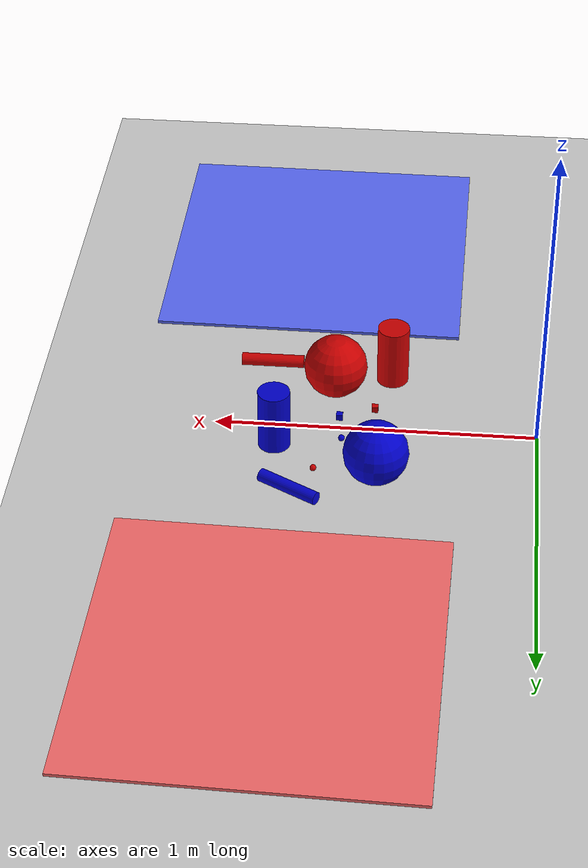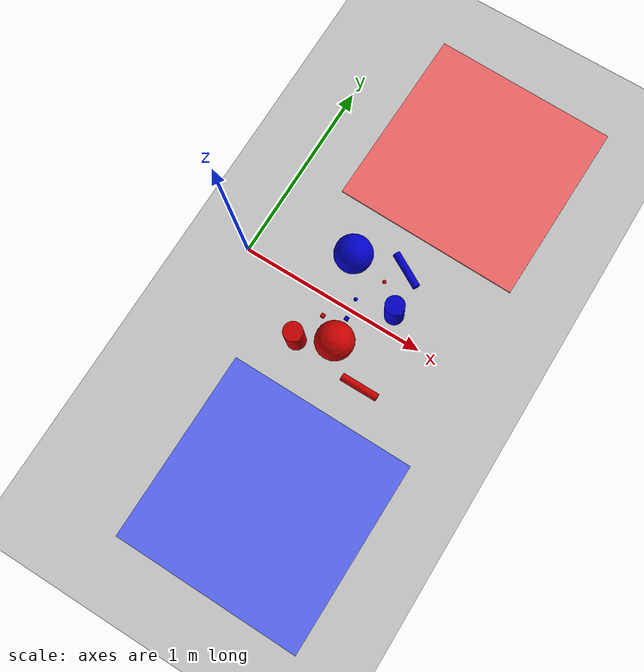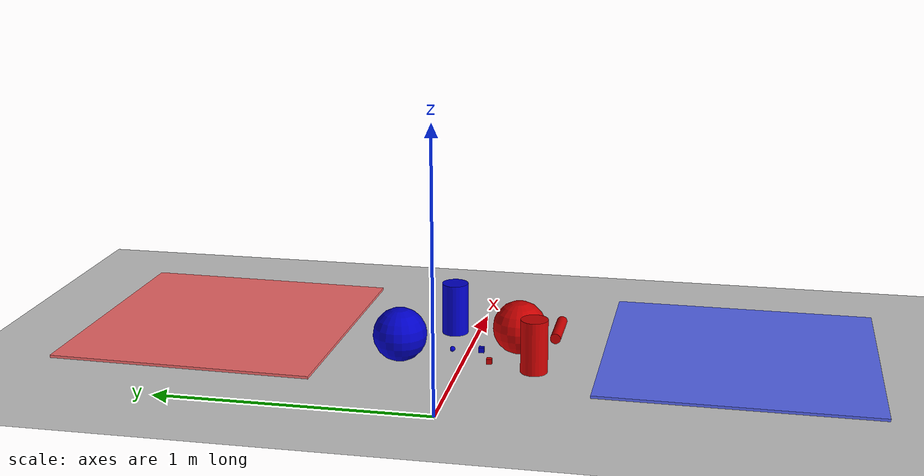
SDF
<sdf version="1.7">
 <world name="default">
  <light name="sun" type="directional">
   <pose>0 0 10 0 -0 0</pose>
   <diffuse>0.8 0.8 0.8 1</diffuse>
   <specular>0.2 0.2 0.2 1</specular>
   <attenuation>
    <range>1000</range>
    <constant>0.9</constant>
    <linear>0.01</linear>
    <quadratic>0.001</quadratic>
   </attenuation>
   <direction>-0.5 0.1 -0.9</direction>
   <spot><inner_angle>0</inner_angle><outer_angle>0</outer_angle><falloff>0</falloff></spot>
  </light>
  <model name="ground_plane">
   <static>1</static>
   <link name="link">
    <collision name="collision">
     <geometry><plane><normal>0 0 1</normal><size>100 100</size></plane></geometry>
     <surface>
      <contact><collide_bitmask>65535</collide_bitmask></contact>
      <friction><ode><mu>100</mu><mu2>50</mu2></ode></friction>
     </surface>
    </collision>
    <visual name="visual">
     <cast_shadows>0</cast_shadows>
     <geometry><plane><normal>0 0 1</normal><size>100 100</size></plane></geometry>
     <material>
      <script><uri>file://media/materials/scripts/gazebo.material</uri><name>Gazebo/Grey</name></script>
     </material>
    </visual>
   </link>
  </model>
  <gravity>0 0 -9.8</gravity>
  <magnetic_field>6e-06 2.3e-05 -4.2e-05</magnetic_field>
  <atmosphere type="adiabatic"/>
  <physics type="ode">
   <max_step_size>0.001</max_step_size>
   <real_time_factor>1</real_time_factor>
   <real_time_update_rate>1000</real_time_update_rate>
  </physics>
  <scene><ambient>0.4 0.4 0.4 1</ambient><background>0.7 0.7 0.7 1</background><shadows>1</shadows></scene>
  <spherical_coordinates>
   <surface_model>EARTH_WGS84</surface_model>
   <latitude_deg>0</latitude_deg>
   <longitude_deg>0</longitude_deg>
   <elevation>0</elevation>
   <heading_deg>0</heading_deg>
  </spherical_coordinates>
  <model name="blue_target_area">
   <link name="link">
    <inertial>
     <mass>2</mass>
     <inertia>
      <ixx>0.166898</ixx>
      <ixy>0</ixy>
      <ixz>0</ixz>
      <iyy>0.166898</iyy>
      <iyz>0</iyz>
      <izz>0.333333</izz>
     </inertia>
    </inertial>
    <visual name="visual">
     <geometry><box><size>1 1 0.01</size></box></geometry>
     <material>
      <script><name>Gazebo/Grey</name><uri>file://media/materials/scripts/gazebo.material</uri></script>
      <shader type="pixel"><normal_map>__default__</normal_map></shader>
      <ambient>0.353 0.42 0.98 1</ambient>
      <diffuse>0.7 0.7 0.7 1</diffuse>
      <specular>0.01 0.01 0.01 1</specular>
      <emissive>0 0 0 1</emissive>
     </material>
    </visual>
    <collision name="collision">
     <geometry><box><size>1 1 0.01</size></box></geometry>
     <surface>
      <friction>
       <ode><mu>1</mu><mu2>1</mu2><fdir1>0 0 0</fdir1><slip1>0</slip1><slip2>0</slip2></ode>
       <torsional>
        <coefficient>1</coefficient>
        <patch_radius>0</patch_radius>
        <surface_radius>0</surface_radius>
        <use_patch_radius>1</use_patch_radius>
        <ode><slip>0</slip></ode>
       </torsional>
      </friction>
      <bounce><restitution_coefficient>0</restitution_coefficient><threshold>1e+06</threshold></bounce>
      <contact>
       <collide_without_contact>0</collide_without_contact>
       <collide_without_contact_bitmask>1</collide_without_contact_bitmask>
       <collide_bitmask>1</collide_bitmask>
       <ode>
        <soft_cfm>0</soft_cfm>
        <soft_erp>0.2</soft_erp>
        <kp>1e+13</kp>
        <kd>1</kd>
        <max_vel>0.01</max_vel>
        <min_depth>0</min_depth>
       </ode>
       <bullet>
        <split_impulse>1</split_impulse>
        <split_impulse_penetration_threshold>-0.01</split_impulse_penetration_threshold>
        <soft_cfm>0</soft_cfm>
        <soft_erp>0.2</soft_erp>
        <kp>1e+13</kp>
        <kd>1</kd>
       </bullet>
      </contact>
     </surface>
    </collision>
   </link>
   <static>0</static>
   <pose>0.75 -1 0.005 0 -0 -0.009292</pose>
  </model>
  <model name="red_target_area">
   <link name="link">
    <inertial>
     <mass>2</mass>
     <inertia>
      <ixx>0.166898</ixx>
      <ixy>0</ixy>
      <ixz>0</ixz>
      <iyy>0.166898</iyy>
      <iyz>0</iyz>
      <izz>0.333333</izz>
     </inertia>
    </inertial>
    <visual name="visual">
     <geometry><box><size>1 1 0.01</size></box></geometry>
     <material>
      <script><name>Gazebo/Grey</name><uri>file://media/materials/scripts/gazebo.material</uri></script>
      <shader type="pixel"><normal_map>__default__</normal_map></shader>
      <ambient>0.973 0.42 0.42 1</ambient>
      <diffuse>0.7 0.7 0.7 1</diffuse>
      <specular>0.01 0.01 0.01 1</specular>
      <emissive>0 0 0 1</emissive>
     </material>
    </visual>
    <collision name="collision">
     <geometry><box><size>1 1 0.01</size></box></geometry>
     <surface>
      <friction>
       <ode><mu>1</mu><mu2>1</mu2><fdir1>0 0 0</fdir1><slip1>0</slip1><slip2>0</slip2></ode>
       <torsional>
        <coefficient>1</coefficient>
        <patch_radius>0</patch_radius>
        <surface_radius>0</surface_radius>
        <use_patch_radius>1</use_patch_radius>
        <ode><slip>0</slip></ode>
       </torsional>
      </friction>
      <bounce><restitution_coefficient>0</restitution_coefficient><threshold>1e+06</threshold></bounce>
      <contact>
       <collide_without_contact>0</collide_without_contact>
       <collide_without_contact_bitmask>1</collide_without_contact_bitmask>
       <collide_bitmask>1</collide_bitmask>
       <ode>
        <soft_cfm>0</soft_cfm>
        <soft_erp>0.2</soft_erp>
        <kp>1e+13</kp>
        <kd>1</kd>
        <max_vel>0.01</max_vel>
        <min_depth>0</min_depth>
       </ode>
       <bullet>
        <split_impulse>1</split_impulse>
        <split_impulse_penetration_threshold>-0.01</split_impulse_penetration_threshold>
        <soft_cfm>0</soft_cfm>
        <soft_erp>0.2</soft_erp>
        <kp>1e+13</kp>
        <kd>1</kd>
       </bullet>
      </contact>
     </surface>
    </collision>
   </link>
   <static>0</static>
   <pose>0.75 1 0.005 0 -0 -0.022172</pose>
  </model>
  <model name="blue_big_ball">
   <link name="link_0">
    <inertial>
     <mass>1</mass>
     <inertia><ixx>0.1</ixx><ixy>0</ixy><ixz>0</ixz><iyy>0.1</iyy><iyz>0</iyz><izz>0.1</izz></inertia>
    </inertial>
    <visual name="visual">
     <geometry><sphere><radius>0.1</radius></sphere></geometry>
     <material>
      <lighting>1</lighting>
      <script><uri>file://media/materials/scripts/gazebo.material</uri><name>Gazebo/Grey</name></script>
      <shader type="pixel"><normal_map>__default__</normal_map></shader>
      <ambient>0 0 0.8 1</ambient>
      <diffuse>0 0 0.8 1</diffuse>
      <specular>0.01 0.01 0.01 1</specular>
      <emissive>0 0 0 1</emissive>
     </material>
    </visual>
    <collision name="collision">
     <geometry><sphere><radius>0.1</radius></sphere></geometry>
     <surface>
      <friction>
       <ode><mu>1</mu><mu2>1</mu2><fdir1>0 0 0</fdir1><slip1>0</slip1><slip2>0</slip2></ode>
       <torsional>
        <coefficient>1</coefficient>
        <patch_radius>0</patch_radius>
        <surface_radius>0</surface_radius>
        <use_patch_radius>1</use_patch_radius>
        <ode><slip>0</slip></ode>
       </torsional>
      </friction>
      <bounce><restitution_coefficient>0</restitution_coefficient><threshold>1e+06</threshold></bounce>
      <contact>
       <collide_without_contact>0</collide_without_contact>
       <collide_without_contact_bitmask>1</collide_without_contact_bitmask>
       <collide_bitmask>1</collide_bitmask>
       <ode>
        <soft_cfm>0</soft_cfm>
        <soft_erp>0.2</soft_erp>
        <kp>1e+13</kp>
        <kd>1</kd>
        <max_vel>0.01</max_vel>
        <min_depth>0</min_depth>
       </ode>
       <bullet>
        <split_impulse>1</split_impulse>
        <split_impulse_penetration_threshold>-0.01</split_impulse_penetration_threshold>
        <soft_cfm>0</soft_cfm>
        <soft_erp>0.2</soft_erp>
        <kp>1e+13</kp>
        <kd>1</kd>
       </bullet>
      </contact>
     </surface>
    </collision>
   </link>
   <static>0</static>
   <pose>0.484621 0.231708 0.1 0 -0 0</pose>
  </model>
  <model name="red_big_ball">
   <link name="link_0">
    <inertial>
     <mass>1</mass>
     <inertia><ixx>0.1</ixx><ixy>0</ixy><ixz>0</ixz><iyy>0.1</iyy><iyz>0</iyz><izz>0.1</izz></inertia>
    </inertial>
    <visual name="visual">
     <geometry><sphere><radius>0.1</radius></sphere></geometry>
     <material>
      <lighting>1</lighting>
      <script><uri>file://media/materials/scripts/gazebo.material</uri><name>Gazebo/Grey</name></script>
      <shader type="pixel"><normal_map>__default__</normal_map></shader>
      <ambient>0.8 0 0 1</ambient>
      <diffuse>0.8 0 0 1</diffuse>
      <specular>0.01 0.01 0.01 1</specular>
      <emissive>0 0 0 1</emissive>
     </material>
    </visual>
    <collision name="collision">
     <geometry><sphere><radius>0.1</radius></sphere></geometry>
     <surface>
      <friction>
       <ode><mu>1</mu><mu2>1</mu2><fdir1>0 0 0</fdir1><slip1>0</slip1><slip2>0</slip2></ode>
       <torsional>
        <coefficient>1</coefficient>
        <patch_radius>0</patch_radius>
        <surface_radius>0</surface_radius>
        <use_patch_radius>1</use_patch_radius>
        <ode><slip>0</slip></ode>
       </torsional>
      </friction>
      <bounce><restitution_coefficient>0</restitution_coefficient><threshold>1e+06</threshold></bounce>
      <contact>
       <collide_without_contact>0</collide_without_contact>
       <collide_without_contact_bitmask>1</collide_without_contact_bitmask>
       <collide_bitmask>1</collide_bitmask>
       <ode>
        <soft_cfm>0</soft_cfm>
        <soft_erp>0.2</soft_erp>
        <kp>1e+13</kp>
        <kd>1</kd>
        <max_vel>0.01</max_vel>
        <min_depth>0</min_depth>
       </ode>
       <bullet>
        <split_impulse>1</split_impulse>
        <split_impulse_penetration_threshold>-0.01</split_impulse_penetration_threshold>
        <soft_cfm>0</soft_cfm>
        <soft_erp>0.2</soft_erp>
        <kp>1e+13</kp>
        <kd>1</kd>
       </bullet>
      </contact>
     </surface>
    </collision>
   </link>
   <static>0</static>
   <pose>0.637053 -0.187903 0.1 0 -0 0</pose>
  </model>
  <model name="blue_big_cylinder">
   <link name="link_0">
    <inertial>
     <mass>0.0225292</mass>
     <inertia>
      <ixx>0.00190916</ixx>
      <ixy>0</ixy>
      <ixz>0</ixz>
      <iyy>0.00190916</iyy>
      <iyz>0</iyz>
      <izz>6.345e-05</izz>
     </inertia>
    </inertial>
    <visual name="visual">
     <geometry><cylinder><radius>0.05</radius><length>0.2</length></cylinder></geometry>
     <material>
      <lighting>1</lighting>
      <script><uri>file://media/materials/scripts/gazebo.material</uri><name>Gazebo/Grey</name></script>
      <shader type="pixel"><normal_map>__default__</normal_map></shader>
      <ambient>0 0 0.8 1</ambient>
      <diffuse>0 0 0.8 1</diffuse>
      <specular>0.01 0.01 0.01 1</specular>
      <emissive>0 0 0 1</emissive>
     </material>
    </visual>
    <collision name="collision">
     <geometry><cylinder><radius>0.05</radius><length>0.2</length></cylinder></geometry>
     <surface>
      <friction>
       <ode><mu>1</mu><mu2>1</mu2><fdir1>0 0 0</fdir1><slip1>0</slip1><slip2>0</slip2></ode>
       <torsional>
        <coefficient>1</coefficient>
        <patch_radius>0</patch_radius>
        <surface_radius>0</surface_radius>
        <use_patch_radius>1</use_patch_radius>
        <ode><slip>0</slip></ode>
       </torsional>
      </friction>
      <bounce><restitution_coefficient>0</restitution_coefficient><threshold>1e+06</threshold></bounce>
      <contact>
       <collide_without_contact>0</collide_without_contact>
       <collide_without_contact_bitmask>1</collide_without_contact_bitmask>
       <collide_bitmask>1</collide_bitmask>
       <ode>
        <soft_cfm>0</soft_cfm>
        <soft_erp>0.2</soft_erp>
        <kp>1e+13</kp>
        <kd>1</kd>
        <max_vel>0.01</max_vel>
        <min_depth>0</min_depth>
       </ode>
       <bullet>
        <split_impulse>1</split_impulse>
        <split_impulse_penetration_threshold>-0.01</split_impulse_penetration_threshold>
        <soft_cfm>0</soft_cfm>
        <soft_erp>0.2</soft_erp>
        <kp>1e+13</kp>
        <kd>1</kd>
       </bullet>
      </contact>
     </surface>
    </collision>
   </link>
   <static>0</static>
   <pose>0.805453 0.090074 0.1 0 -0 0</pose>
  </model>
  <model name="red_small_ball">
   <link name="link_0">
    <inertial>
     <mass>1</mass>
     <inertia><ixx>0.1</ixx><ixy>0</ixy><ixz>0</ixz><iyy>0.1</iyy><iyz>0</iyz><izz>0.1</izz></inertia>
    </inertial>
    <visual name="visual">
     <geometry><sphere><radius>0.01</radius></sphere></geometry>
     <material>
      <lighting>1</lighting>
      <script><uri>file://media/materials/scripts/gazebo.material</uri><name>Gazebo/Grey</name></script>
      <shader type="pixel"><normal_map>__default__</normal_map></shader>
      <ambient>0.8 0 0 1</ambient>
      <diffuse>0.8 0 0 1</diffuse>
      <specular>0.01 0.01 0.01 1</specular>
      <emissive>0 0 0 1</emissive>
     </material>
    </visual>
    <collision name="collision">
     <geometry><sphere><radius>0.01</radius></sphere></geometry>
     <surface>
      <friction>
       <ode><mu>1</mu><mu2>1</mu2><fdir1>0 0 0</fdir1><slip1>0</slip1><slip2>0</slip2></ode>
       <torsional>
        <coefficient>1</coefficient>
        <patch_radius>0</patch_radius>
        <surface_radius>0</surface_radius>
        <use_patch_radius>1</use_patch_radius>
        <ode><slip>0</slip></ode>
       </torsional>
      </friction>
      <bounce><restitution_coefficient>0</restitution_coefficient><threshold>1e+06</threshold></bounce>
      <contact>
       <collide_without_contact>0</collide_without_contact>
       <collide_without_contact_bitmask>1</collide_without_contact_bitmask>
       <collide_bitmask>1</collide_bitmask>
       <ode>
        <soft_cfm>0</soft_cfm>
        <soft_erp>0.2</soft_erp>
        <kp>1e+13</kp>
        <kd>1</kd>
        <max_vel>0.01</max_vel>
        <min_depth>0</min_depth>
       </ode>
       <bullet>
        <split_impulse>1</split_impulse>
        <split_impulse_penetration_threshold>-0.01</split_impulse_penetration_threshold>
        <soft_cfm>0</soft_cfm>
        <soft_erp>0.2</soft_erp>
        <kp>1e+13</kp>
        <kd>1</kd>
       </bullet>
      </contact>
     </surface>
    </collision>
   </link>
   <static>0</static>
   <pose>0.675496 0.210113 0.01 0 -0 0</pose>
  </model>
  <model name="blue_cylinder">
   <link name="link_0">
    <inertial>
     <mass>0.0225292</mass>
     <inertia>
      <ixx>0.00190916</ixx>
      <ixy>0</ixy>
      <ixz>0</ixz>
      <iyy>0.00190916</iyy>
      <iyz>0</iyz>
      <izz>6.345e-05</izz>
     </inertia>
    </inertial>
    <visual name="visual">
     <geometry><cylinder><radius>0.02</radius><length>0.2</length></cylinder></geometry>
     <material>
      <lighting>1</lighting>
      <script><uri>file://media/materials/scripts/gazebo.material</uri><name>Gazebo/Grey</name></script>
      <shader type="pixel"><normal_map>__default__</normal_map></shader>
      <ambient>0 0 0.8 1</ambient>
      <diffuse>0 0 0.8 1</diffuse>
      <specular>0.01 0.01 0.01 1</specular>
      <emissive>0 0 0 1</emissive>
     </material>
    </visual>
    <collision name="collision">
     <geometry><cylinder><radius>0.02</radius><length>0.2</length></cylinder></geometry>
     <surface>
      <friction>
       <ode><mu>1</mu><mu2>1</mu2><fdir1>0 0 0</fdir1><slip1>0</slip1><slip2>0</slip2></ode>
       <torsional>
        <coefficient>1</coefficient>
        <patch_radius>0</patch_radius>
        <surface_radius>0</surface_radius>
        <use_patch_radius>1</use_patch_radius>
        <ode><slip>0</slip></ode>
       </torsional>
      </friction>
      <bounce><restitution_coefficient>0</restitution_coefficient><threshold>1e+06</threshold></bounce>
      <contact>
       <collide_without_contact>0</collide_without_contact>
       <collide_without_contact_bitmask>1</collide_without_contact_bitmask>
       <collide_bitmask>1</collide_bitmask>
       <ode>
        <soft_cfm>0</soft_cfm>
        <soft_erp>0.2</soft_erp>
        <kp>1e+13</kp>
        <kd>1</kd>
        <max_vel>0.01</max_vel>
        <min_depth>0</min_depth>
       </ode>
       <bullet>
        <split_impulse>1</split_impulse>
        <split_impulse_penetration_threshold>-0.01</split_impulse_penetration_threshold>
        <soft_cfm>0</soft_cfm>
        <soft_erp>0.2</soft_erp>
        <kp>1e+13</kp>
        <kd>1</kd>
       </bullet>
      </contact>
     </surface>
    </collision>
   </link>
   <static>0</static>
   <pose>0.740512 0.316261 0.02 -1.5708 1.56854 -2.07571</pose>
  </model>
  <model name="blue_small_ball">
   <link name="link_0">
    <inertial>
     <mass>1</mass>
     <inertia><ixx>0.1</ixx><ixy>0</ixy><ixz>0</ixz><iyy>0.1</iyy><iyz>0</iyz><izz>0.1</izz></inertia>
    </inertial>
    <visual name="visual">
     <geometry><sphere><radius>0.01</radius></sphere></geometry>
     <material>
      <lighting>1</lighting>
      <script><uri>file://media/materials/scripts/gazebo.material</uri><name>Gazebo/Grey</name></script>
      <shader type="pixel"><normal_map>__default__</normal_map></shader>
      <ambient>0 0 0.8 1</ambient>
      <diffuse>0 0 0.8 1</diffuse>
      <specular>0.01 0.01 0.01 1</specular>
      <emissive>0 0 0 1</emissive>
     </material>
    </visual>
    <collision name="collision">
     <geometry><sphere><radius>0.01</radius></sphere></geometry>
     <surface>
      <friction>
       <ode><mu>1</mu><mu2>1</mu2><fdir1>0 0 0</fdir1><slip1>0</slip1><slip2>0</slip2></ode>
       <torsional>
        <coefficient>1</coefficient>
        <patch_radius>0</patch_radius>
        <surface_radius>0</surface_radius>
        <use_patch_radius>1</use_patch_radius>
        <ode><slip>0</slip></ode>
       </torsional>
      </friction>
      <bounce><restitution_coefficient>0</restitution_coefficient><threshold>1e+06</threshold></bounce>
      <contact>
       <collide_without_contact>0</collide_without_contact>
       <collide_without_contact_bitmask>1</collide_without_contact_bitmask>
       <collide_bitmask>1</collide_bitmask>
       <ode>
        <soft_cfm>0</soft_cfm>
        <soft_erp>0.2</soft_erp>
        <kp>1e+13</kp>
        <kd>1</kd>
        <max_vel>0.01</max_vel>
        <min_depth>0</min_depth>
       </ode>
       <bullet>
        <split_impulse>1</split_impulse>
        <split_impulse_penetration_threshold>-0.01</split_impulse_penetration_threshold>
        <soft_cfm>0</soft_cfm>
        <soft_erp>0.2</soft_erp>
        <kp>1e+13</kp>
        <kd>1</kd>
       </bullet>
      </contact>
     </surface>
    </collision>
   </link>
   <static>0</static>
   <pose>0.600322 0.059487 0.01 0 -0 0</pose>
  </model>
  <model name="red_cylinder">
   <link name="link_0">
    <inertial>
     <mass>0.0225292</mass>
     <inertia>
      <ixx>0.00190916</ixx>
      <ixy>0</ixy>
      <ixz>0</ixz>
      <iyy>0.00190916</iyy>
      <iyz>0</iyz>
      <izz>6.345e-05</izz>
     </inertia>
    </inertial>
    <visual name="visual">
     <geometry><cylinder><radius>0.02</radius><length>0.2</length></cylinder></geometry>
     <material>
      <lighting>1</lighting>
      <script><uri>file://media/materials/scripts/gazebo.material</uri><name>Gazebo/Grey</name></script>
      <shader type="pixel"><normal_map>__default__</normal_map></shader>
      <ambient>0.8 0 0 1</ambient>
      <diffuse>0.8 0 0 1</diffuse>
      <specular>0.01 0.01 0.01 1</specular>
      <emissive>0 0 0 1</emissive>
     </material>
    </visual>
    <collision name="collision">
     <geometry><cylinder><radius>0.02</radius><length>0.2</length></cylinder></geometry>
     <surface>
      <friction>
       <ode><mu>1</mu><mu2>1</mu2><fdir1>0 0 0</fdir1><slip1>0</slip1><slip2>0</slip2></ode>
       <torsional>
        <coefficient>1</coefficient>
        <patch_radius>0</patch_radius>
        <surface_radius>0</surface_radius>
        <use_patch_radius>1</use_patch_radius>
        <ode><slip>0</slip></ode>
       </torsional>
      </friction>
      <bounce><restitution_coefficient>0</restitution_coefficient><threshold>1e+06</threshold></bounce>
      <contact>
       <collide_without_contact>0</collide_without_contact>
       <collide_without_contact_bitmask>1</collide_without_contact_bitmask>
       <collide_bitmask>1</collide_bitmask>
       <ode>
        <soft_cfm>0</soft_cfm>
        <soft_erp>0.2</soft_erp>
        <kp>1e+13</kp>
        <kd>1</kd>
        <max_vel>0.01</max_vel>
        <min_depth>0</min_depth>
       </ode>
       <bullet>
        <split_impulse>1</split_impulse>
        <split_impulse_penetration_threshold>-0.01</split_impulse_penetration_threshold>
        <soft_cfm>0</soft_cfm>
        <soft_erp>0.2</soft_erp>
        <kp>1e+13</kp>
        <kd>1</kd>
       </bullet>
      </contact>
     </surface>
    </collision>
   </link>
   <static>0</static>
   <pose>0.848991 -0.307839 0.02 -1.5708 1.57079 -1.57076</pose>
  </model>
  <model name="red_big_cylinder">
   <link name="link_0">
    <inertial>
     <mass>0.0225292</mass>
     <inertia>
      <ixx>0.00190916</ixx>
      <ixy>0</ixy>
      <ixz>0</ixz>
      <iyy>0.00190916</iyy>
      <iyz>0</iyz>
      <izz>6.345e-05</izz>
     </inertia>
    </inertial>
    <visual name="visual">
     <geometry><cylinder><radius>0.05</radius><length>0.2</length></cylinder></geometry>
     <material>
      <lighting>1</lighting>
      <script><uri>file://media/materials/scripts/gazebo.material</uri><name>Gazebo/Grey</name></script>
      <shader type="pixel"><normal_map>__default__</normal_map></shader>
      <ambient>0.8 0 0 1</ambient>
      <diffuse>0.8 0 0 1</diffuse>
      <specular>0.01 0.01 0.01 1</specular>
      <emissive>0 0 0 1</emissive>
     </material>
    </visual>
    <collision name="collision">
     <geometry><cylinder><radius>0.05</radius><length>0.2</length></cylinder></geometry>
     <surface>
      <friction>
       <ode><mu>1</mu><mu2>1</mu2><fdir1>0 0 0</fdir1><slip1>0</slip1><slip2>0</slip2></ode>
       <torsional>
        <coefficient>1</coefficient>
        <patch_radius>0</patch_radius>
        <surface_radius>0</surface_radius>
        <use_patch_radius>1</use_patch_radius>
        <ode><slip>0</slip></ode>
       </torsional>
      </friction>
      <bounce><restitution_coefficient>0</restitution_coefficient><threshold>1e+06</threshold></bounce>
      <contact>
       <collide_without_contact>0</collide_without_contact>
       <collide_without_contact_bitmask>1</collide_without_contact_bitmask>
       <collide_bitmask>1</collide_bitmask>
       <ode>
        <soft_cfm>0</soft_cfm>
        <soft_erp>0.2</soft_erp>
        <kp>1e+13</kp>
        <kd>1</kd>
        <max_vel>0.01</max_vel>
        <min_depth>0</min_depth>
       </ode>
       <bullet>
        <split_impulse>1</split_impulse>
        <split_impulse_penetration_threshold>-0.01</split_impulse_penetration_threshold>
        <soft_cfm>0</soft_cfm>
        <soft_erp>0.2</soft_erp>
        <kp>1e+13</kp>
        <kd>1</kd>
       </bullet>
      </contact>
     </surface>
    </collision>
   </link>
   <static>0</static>
   <pose>0.460407 -0.268626 0.1 0 -0 0</pose>
  </model>
  <model name="red_cube">
   <link name="link_0">
    <inertial>
     <mass>1</mass>
     <inertia>
      <ixx>0.166667</ixx>
      <ixy>0</ixy>
      <ixz>0</ixz>
      <iyy>0.166667</iyy>
      <iyz>0</iyz>
      <izz>0.166667</izz>
     </inertia>
    </inertial>
    <visual name="visual">
     <geometry><box><size>0.02 0.02 0.02</size></box></geometry>
     <material>
      <lighting>1</lighting>
      <script><uri>file://media/materials/scripts/gazebo.material</uri><name>Gazebo/Grey</name></script>
      <shader type="pixel"><normal_map>__default__</normal_map></shader>
      <ambient>0.8 0 0 1</ambient>
      <diffuse>0.8 0 0 1</diffuse>
      <specular>0.01 0.01 0.01 1</specular>
      <emissive>0 0 0 1</emissive>
     </material>
    </visual>
    <collision name="collision">
     <geometry><box><size>0.02 0.02 0.02</size></box></geometry>
     <surface>
      <friction>
       <ode><mu>1</mu><mu2>1</mu2><fdir1>0 0 0</fdir1><slip1>0</slip1><slip2>0</slip2></ode>
       <torsional>
        <coefficient>1</coefficient>
        <patch_radius>0</patch_radius>
        <surface_radius>0</surface_radius>
        <use_patch_radius>1</use_patch_radius>
        <ode><slip>0</slip></ode>
       </torsional>
      </friction>
      <bounce><restitution_coefficient>0</restitution_coefficient><threshold>1e+06</threshold></bounce>
      <contact>
       <collide_without_contact>0</collide_without_contact>
       <collide_without_contact_bitmask>1</collide_without_contact_bitmask>
       <collide_bitmask>1</collide_bitmask>
       <ode>
        <soft_cfm>0</soft_cfm>
        <soft_erp>0.2</soft_erp>
        <kp>1e+13</kp>
        <kd>1</kd>
        <max_vel>0.01</max_vel>
        <min_depth>0</min_depth>
       </ode>
       <bullet>
        <split_impulse>1</split_impulse>
        <split_impulse_penetration_threshold>-0.01</split_impulse_penetration_threshold>
        <soft_cfm>0</soft_cfm>
        <soft_erp>0.2</soft_erp>
        <kp>1e+13</kp>
        <kd>1</kd>
       </bullet>
      </contact>
     </surface>
    </collision>
   </link>
   <static>0</static>
   <pose>0.506083 -0.09696 0.01 -3e-06 6e-06 1e-06</pose>
  </model>
  <model name="blue_cube">
   <link name="link_0">
    <inertial>
     <mass>1</mass>
     <inertia>
      <ixx>0.166667</ixx>
      <ixy>0</ixy>
      <ixz>0</ixz>
      <iyy>0.166667</iyy>
      <iyz>0</iyz>
      <izz>0.166667</izz>
     </inertia>
    </inertial>
    <visual name="visual">
     <geometry><box><size>0.02 0.02 0.02</size></box></geometry>
     <material>
      <lighting>1</lighting>
      <script><uri>file://media/materials/scripts/gazebo.material</uri><name>Gazebo/Grey</name></script>
      <shader type="pixel"><normal_map>__default__</normal_map></shader>
      <ambient>0 0 0.8 1</ambient>
      <diffuse>0 0 0.8 1</diffuse>
      <specular>0.01 0.01 0.01 1</specular>
      <emissive>0 0 0 1</emissive>
     </material>
    </visual>
    <collision name="collision">
     <geometry><box><size>0.02 0.02 0.02</size></box></geometry>
     <surface>
      <friction>
       <ode><mu>1</mu><mu2>1</mu2><fdir1>0 0 0</fdir1><slip1>0</slip1><slip2>0</slip2></ode>
       <torsional>
        <coefficient>1</coefficient>
        <patch_radius>0</patch_radius>
        <surface_radius>0</surface_radius>
        <use_patch_radius>1</use_patch_radius>
        <ode><slip>0</slip></ode>
       </torsional>
      </friction>
      <bounce><restitution_coefficient>0</restitution_coefficient><threshold>1e+06</threshold></bounce>
      <contact>
       <collide_without_contact>0</collide_without_contact>
       <collide_without_contact_bitmask>1</collide_without_contact_bitmask>
       <collide_bitmask>1</collide_bitmask>
       <ode>
        <soft_cfm>0</soft_cfm>
        <soft_erp>0.2</soft_erp>
        <kp>1e+13</kp>
        <kd>1</kd>
        <max_vel>0.01</max_vel>
        <min_depth>0</min_depth>
       </ode>
       <bullet>
        <split_impulse>1</split_impulse>
        <split_impulse_penetration_threshold>-0.01</split_impulse_penetration_threshold>
        <soft_cfm>0</soft_cfm>
        <soft_erp>0.2</soft_erp>
        <kp>1e+13</kp>
        <kd>1</kd>
       </bullet>
      </contact>
     </surface>
    </collision>
   </link>
   <static>0</static>
   <pose>0.614252 -0.048381 0.01 0 -4.3e-05 0</pose>
  </model>
 </world>
</sdf>
